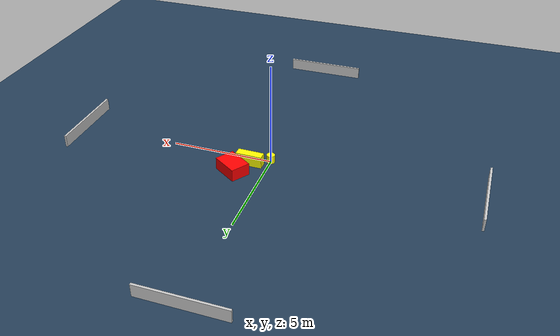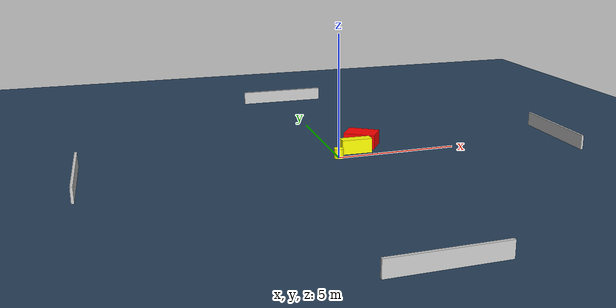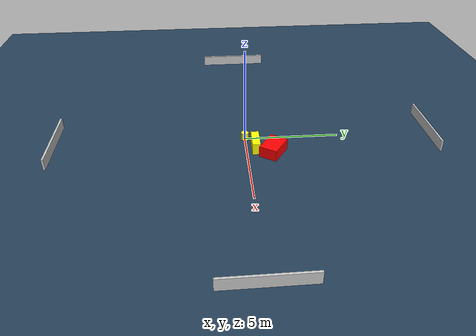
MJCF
<?xml version="1.0" ?>
<mujoco model="generated_environment">
  <option timestep="0.01" integrator="RK4" cone="elliptic"/>
  <default>
    <geom density="1"/>
  </default>
  <asset>
    <texture builtin="gradient" height="3072" name="skybox" rgb1="0.3 0.5 0.7" rgb2="0 0 0" type="skybox" width="512"/>
    <texture builtin="checker" height="300" name="groundplane" rgb1="0.2 0.3 0.4" rgb2="0.1 0.2 0.3" type="2d" width="300"/>
    <material name="groundplane" reflectance="0.2" texrepeat="5 5" texture="groundplane"/>
  </asset>
  <worldbody>
    <light dir="0 0 -1" directional="true" pos="0 0 1.5"/>
    <geom condim="3" friction="0.5 0.005 0.001" material="groundplane" name="floor" pos="0 0 0" size="0 0 0.05" type="plane"/>
    <body name="walls">
      <geom name="wall_1" condim="4" pos="-10.0 0.0 0.3" rgba="0.800000011920929 0.800000011920929 0.800000011920929 1.0" size="0.05 2.0 0.3" type="box"/>
      <geom name="wall_2" condim="4" pos="10.0 0.0 0.3" rgba="0.800000011920929 0.800000011920929 0.800000011920929 1.0" size="0.05 2.0 0.3" type="box"/>
      <geom name="wall_3" condim="4" pos="0.0 -10.0 0.3" rgba="0.800000011920929 0.800000011920929 0.800000011920929 1.0" size="2.0 0.05 0.3" type="box"/>
      <geom name="wall_4" condim="4" pos="0.0 10.0 0.3" rgba="0.800000011920929 0.800000011920929 0.800000011920929 1.0" size="2.0 0.05 0.3" type="box"/>
    </body>
    <body name="robot">
      <joint name="joint_x" type="slide" pos="0 0 0" axis="1 0 0"/>
      <joint name="joint_y" type="slide" pos="0 0 0" axis="0 1 0"/>
      <geom name="robot" type="cylinder" pos="0.0 0.0 0.2" size="0.2 0.2 0.0" mass="5.0" friction="1.0 0.005 0.0001" condim="4" rgba="1.0 1.0 0.0 1.0"/>
    </body>
    <body name="obstacle_1_movable">
      <geom name="obstacle_1_movable" condim="4" pos="0.8860493891252563 0.47770543308055585 0.3" euler="0 0 358.7373227076725" friction="0.0 0.005 0.001" rgba="1.0 1.0 0.0 1.0" size="0.6356851275229027 0.20820897064391275 0.3" type="box" mass="0.1"/>
      <joint type="free"/>
    </body>
    <body name="obstacle_2_static">
      <geom name="obstacle_2_static" condim="4" pos="1.431783244702651 1.3431636206726678 0.3" euler="0 0 236.176489404163" friction="0.0 0.005 0.001" rgba="1.0 0.0 0.0 1.0" size="0.4772421708757879 0.6616840119900194 0.3" type="box"/>
    </body>
  </worldbody>
  <actuator>
    <motor name="actuator_x" joint="joint_x" gear="1" ctrlrange="-1 1"/>
    <motor name="actuator_y" joint="joint_y" gear="1" ctrlrange="-1 1"/>
  </actuator>
</mujoco>
